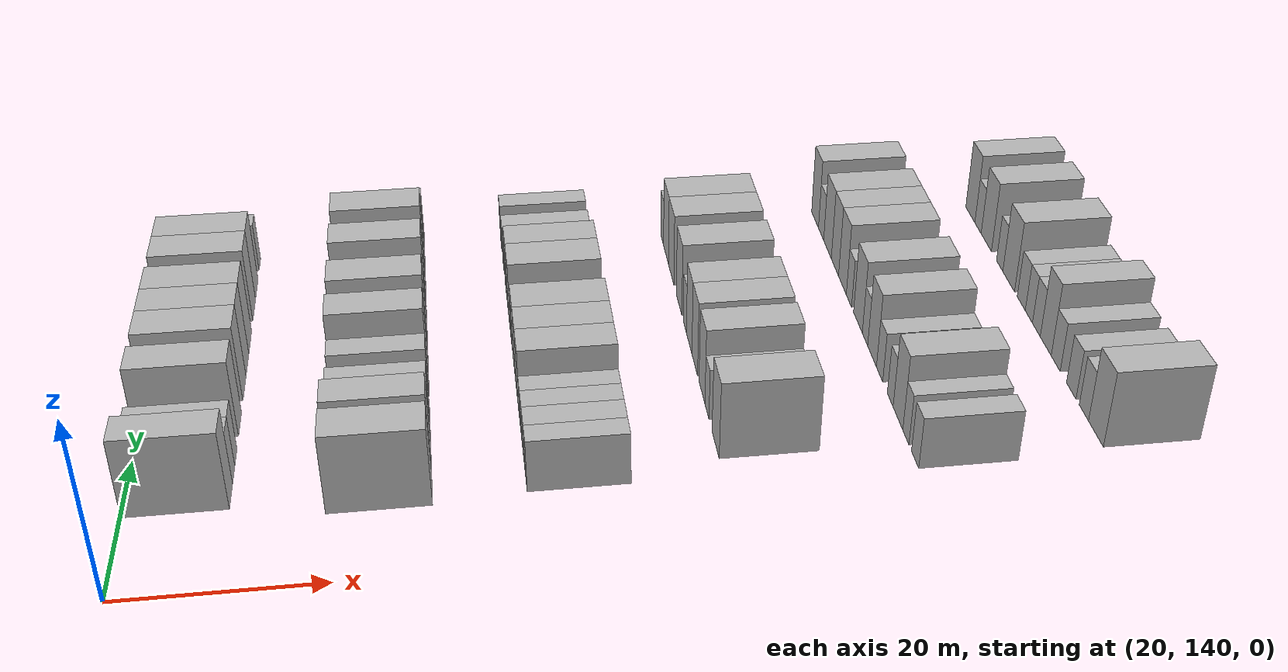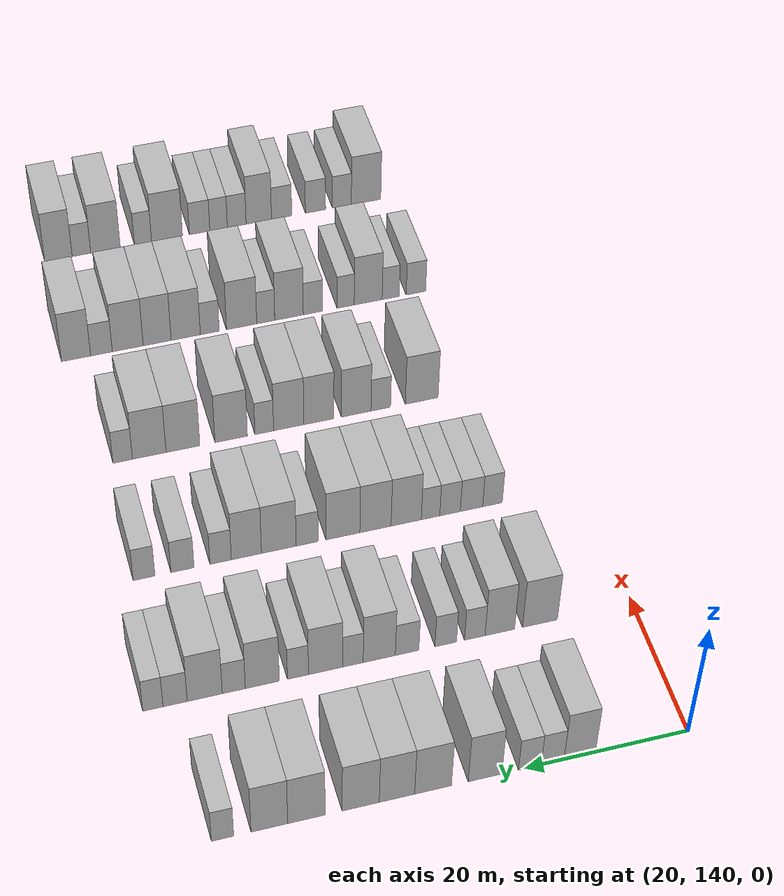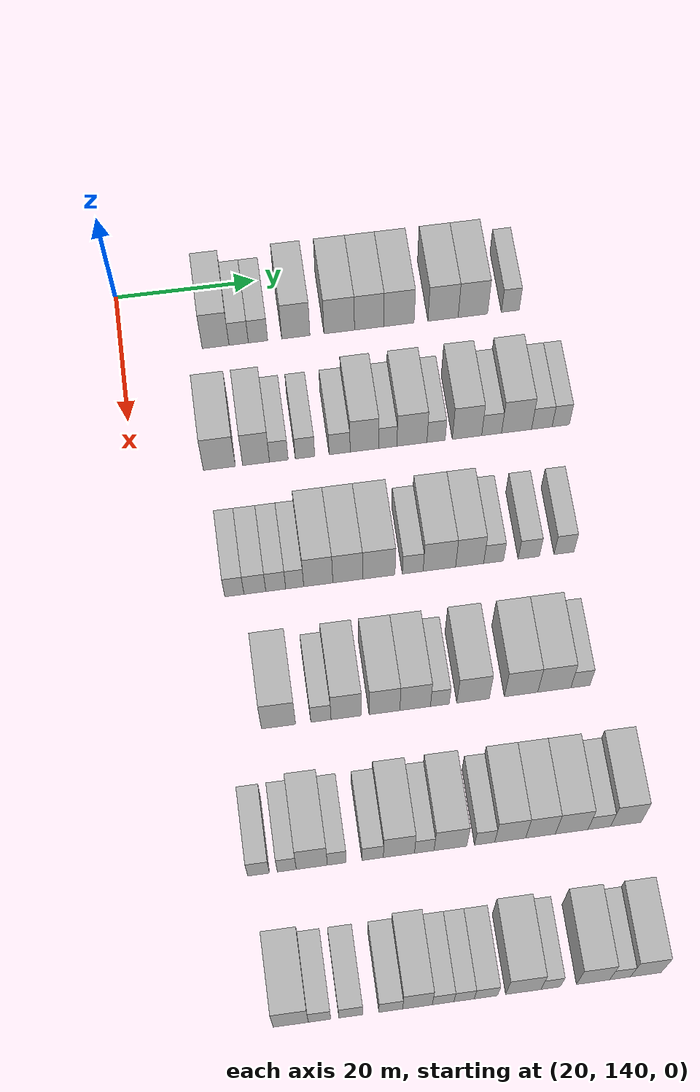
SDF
<sdf version="1.6">
 <world name="default">
  <model name="building_131">
   <static>1</static>
   <pose>25.0000 153.3225 0 0.000000 0.000000 0.000000</pose>
   <link name="link">
    <pose>0 0 4.50 0 0 0</pose>
    <collision name="collision"><geometry><box><size>10.0000 3.8089 9.0000</size></box></geometry></collision>
    <visual name="visual">
     <cast_shadows>0</cast_shadows>
     <geometry><box><size>10.0000 3.8089 9.0000</size></box></geometry>
     <material>
      <script>
       <uri>model://HANNAS_wall/materials/scripts</uri>
       <uri>model://HANNAS_wall/materials/textures</uri>
       <name>vrc/HANNAS_wall</name>
      </script>
     </material>
    </visual>
   </link>
  </model>
  <model name="building_132">
   <static>1</static>
   <pose>25.0000 156.6033 0 0.000000 0.000000 0.000000</pose>
   <link name="link">
    <pose>0 0 3.00 0 0 0</pose>
    <collision name="collision"><geometry><box><size>10.0000 2.7527 6.0000</size></box></geometry></collision>
    <visual name="visual">
     <cast_shadows>0</cast_shadows>
     <geometry><box><size>10.0000 2.7527 6.0000</size></box></geometry>
     <material>
      <script>
       <uri>model://HANNAS_wall/materials/scripts</uri>
       <uri>model://HANNAS_wall/materials/textures</uri>
       <name>vrc/HANNAS_wall</name>
      </script>
     </material>
    </visual>
   </link>
  </model>
  <model name="building_133">
   <static>1</static>
   <pose>25.0000 159.3531 0 0.000000 0.000000 0.000000</pose>
   <link name="link">
    <pose>0 0 3.00 0 0 0</pose>
    <collision name="collision"><geometry><box><size>10.0000 2.7469 6.0000</size></box></geometry></collision>
    <visual name="visual">
     <cast_shadows>0</cast_shadows>
     <geometry><box><size>10.0000 2.7469 6.0000</size></box></geometry>
     <material>
      <script>
       <uri>model://HANNAS_wall/materials/scripts</uri>
       <uri>model://HANNAS_wall/materials/textures</uri>
       <name>vrc/HANNAS_wall</name>
      </script>
     </material>
    </visual>
   </link>
  </model>
  <model name="building_134">
   <static>1</static>
   <pose>25.0000 164.7427 0 0.000000 0.000000 0.000000</pose>
   <link name="link">
    <pose>0 0 4.50 0 0 0</pose>
    <collision name="collision"><geometry><box><size>10.0000 4.0324 9.0000</size></box></geometry></collision>
    <visual name="visual">
     <cast_shadows>0</cast_shadows>
     <geometry><box><size>10.0000 4.0324 9.0000</size></box></geometry>
     <material>
      <script>
       <uri>model://HANNAS_wall/materials/scripts</uri>
       <uri>model://HANNAS_wall/materials/textures</uri>
       <name>vrc/HANNAS_wall</name>
      </script>
     </material>
    </visual>
   </link>
  </model>
  <model name="building_135">
   <static>1</static>
   <pose>25.0000 170.9403 0 0.000000 0.000000 0.000000</pose>
   <link name="link">
    <pose>0 0 4.50 0 0 0</pose>
    <collision name="collision"><geometry><box><size>10.0000 4.3627 9.0000</size></box></geometry></collision>
    <visual name="visual">
     <cast_shadows>0</cast_shadows>
     <geometry><box><size>10.0000 4.3627 9.0000</size></box></geometry>
     <material>
      <script>
       <uri>model://HANNAS_wall/materials/scripts</uri>
       <uri>model://HANNAS_wall/materials/textures</uri>
       <name>vrc/HANNAS_wall</name>
      </script>
     </material>
    </visual>
   </link>
  </model>
  <model name="building_136">
   <static>1</static>
   <pose>25.0000 175.2141 0 0.000000 0.000000 0.000000</pose>
   <link name="link">
    <pose>0 0 4.50 0 0 0</pose>
    <collision name="collision"><geometry><box><size>10.0000 4.1849 9.0000</size></box></geometry></collision>
    <visual name="visual">
     <cast_shadows>0</cast_shadows>
     <geometry><box><size>10.0000 4.1849 9.0000</size></box></geometry>
     <material>
      <script>
       <uri>model://HANNAS_wall/materials/scripts</uri>
       <uri>model://HANNAS_wall/materials/textures</uri>
       <name>vrc/HANNAS_wall</name>
      </script>
     </material>
    </visual>
   </link>
  </model>
  <model name="building_137">
   <static>1</static>
   <pose>25.0000 179.4882 0 0.000000 0.000000 0.000000</pose>
   <link name="link">
    <pose>0 0 4.50 0 0 0</pose>
    <collision name="collision"><geometry><box><size>10.0000 4.3634 9.0000</size></box></geometry></collision>
    <visual name="visual">
     <cast_shadows>0</cast_shadows>
     <geometry><box><size>10.0000 4.3634 9.0000</size></box></geometry>
     <material>
      <script>
       <uri>model://HANNAS_wall/materials/scripts</uri>
       <uri>model://HANNAS_wall/materials/textures</uri>
       <name>vrc/HANNAS_wall</name>
      </script>
     </material>
    </visual>
   </link>
  </model>
  <model name="building_138">
   <static>1</static>
   <pose>25.0000 185.8412 0 0.000000 0.000000 0.000000</pose>
   <link name="link">
    <pose>0 0 4.50 0 0 0</pose>
    <collision name="collision"><geometry><box><size>10.0000 4.3426 9.0000</size></box></geometry></collision>
    <visual name="visual">
     <cast_shadows>0</cast_shadows>
     <geometry><box><size>10.0000 4.3426 9.0000</size></box></geometry>
     <material>
      <script>
       <uri>model://HANNAS_wall/materials/scripts</uri>
       <uri>model://HANNAS_wall/materials/textures</uri>
       <name>vrc/HANNAS_wall</name>
      </script>
     </material>
    </visual>
   </link>
  </model>
  <model name="building_139">
   <static>1</static>
   <pose>25.0000 190.1356 0 0.000000 0.000000 0.000000</pose>
   <link name="link">
    <pose>0 0 4.50 0 0 0</pose>
    <collision name="collision"><geometry><box><size>10.0000 4.2461 9.0000</size></box></geometry></collision>
    <visual name="visual">
     <cast_shadows>0</cast_shadows>
     <geometry><box><size>10.0000 4.2461 9.0000</size></box></geometry>
     <material>
      <script>
       <uri>model://HANNAS_wall/materials/scripts</uri>
       <uri>model://HANNAS_wall/materials/textures</uri>
       <name>vrc/HANNAS_wall</name>
      </script>
     </material>
    </visual>
   </link>
  </model>
  <model name="building_140">
   <static>1</static>
   <pose>25.0000 195.5425 0 0.000000 0.000000 0.000000</pose>
   <link name="link">
    <pose>0 0 3.00 0 0 0</pose>
    <collision name="collision"><geometry><box><size>10.0000 2.5679 6.0000</size></box></geometry></collision>
    <visual name="visual">
     <cast_shadows>0</cast_shadows>
     <geometry><box><size>10.0000 2.5679 6.0000</size></box></geometry>
     <material>
      <script>
       <uri>model://HANNAS_wall/materials/scripts</uri>
       <uri>model://HANNAS_wall/materials/textures</uri>
       <name>vrc/HANNAS_wall</name>
      </script>
     </material>
    </visual>
   </link>
  </model>
  <model name="building_304">
   <static>1</static>
   <pose>44.0000 151.8155 0 0.000000 0.000000 0.000000</pose>
   <link name="link">
    <pose>0 0 4.50 0 0 0</pose>
    <collision name="collision"><geometry><box><size>10.0000 4.4220 9.0000</size></box></geometry></collision>
    <visual name="visual">
     <cast_shadows>0</cast_shadows>
     <geometry><box><size>10.0000 4.4220 9.0000</size></box></geometry>
     <material>
      <script>
       <uri>model://HANNAS_wall/materials/scripts</uri>
       <uri>model://HANNAS_wall/materials/textures</uri>
       <name>vrc/HANNAS_wall</name>
      </script>
     </material>
    </visual>
   </link>
  </model>
  <model name="building_305">
   <static>1</static>
   <pose>44.0000 156.8852 0 0.000000 0.000000 0.000000</pose>
   <link name="link">
    <pose>0 0 4.50 0 0 0</pose>
    <collision name="collision"><geometry><box><size>10.0000 3.7173 9.0000</size></box></geometry></collision>
    <visual name="visual">
     <cast_shadows>0</cast_shadows>
     <geometry><box><size>10.0000 3.7173 9.0000</size></box></geometry>
     <material>
      <script>
       <uri>model://HANNAS_wall/materials/scripts</uri>
       <uri>model://HANNAS_wall/materials/textures</uri>
       <name>vrc/HANNAS_wall</name>
      </script>
     </material>
    </visual>
   </link>
  </model>
  <model name="building_306">
   <static>1</static>
   <pose>44.0000 160.0343 0 0.000000 0.000000 0.000000</pose>
   <link name="link">
    <pose>0 0 3.00 0 0 0</pose>
    <collision name="collision"><geometry><box><size>10.0000 2.5809 6.0000</size></box></geometry></collision>
    <visual name="visual">
     <cast_shadows>0</cast_shadows>
     <geometry><box><size>10.0000 2.5809 6.0000</size></box></geometry>
     <material>
      <script>
       <uri>model://HANNAS_wall/materials/scripts</uri>
       <uri>model://HANNAS_wall/materials/textures</uri>
       <name>vrc/HANNAS_wall</name>
      </script>
     </material>
    </visual>
   </link>
  </model>
  <model name="building_307">
   <static>1</static>
   <pose>44.0000 163.6705 0 0.000000 0.000000 0.000000</pose>
   <link name="link">
    <pose>0 0 3.00 0 0 0</pose>
    <collision name="collision"><geometry><box><size>10.0000 2.6915 6.0000</size></box></geometry></collision>
    <visual name="visual">
     <cast_shadows>0</cast_shadows>
     <geometry><box><size>10.0000 2.6915 6.0000</size></box></geometry>
     <material>
      <script>
       <uri>model://HANNAS_wall/materials/scripts</uri>
       <uri>model://HANNAS_wall/materials/textures</uri>
       <name>vrc/HANNAS_wall</name>
      </script>
     </material>
    </visual>
   </link>
  </model>
  <model name="building_308">
   <static>1</static>
   <pose>44.0000 168.4774 0 0.000000 0.000000 0.000000</pose>
   <link name="link">
    <pose>0 0 3.00 0 0 0</pose>
    <collision name="collision"><geometry><box><size>10.0000 2.9225 6.0000</size></box></geometry></collision>
    <visual name="visual">
     <cast_shadows>0</cast_shadows>
     <geometry><box><size>10.0000 2.9225 6.0000</size></box></geometry>
     <material>
      <script>
       <uri>model://HANNAS_wall/materials/scripts</uri>
       <uri>model://HANNAS_wall/materials/textures</uri>
       <name>vrc/HANNAS_wall</name>
      </script>
     </material>
    </visual>
   </link>
  </model>
  <model name="building_309">
   <static>1</static>
   <pose>44.0000 171.9271 0 0.000000 0.000000 0.000000</pose>
   <link name="link">
    <pose>0 0 4.50 0 0 0</pose>
    <collision name="collision"><geometry><box><size>10.0000 3.9768 9.0000</size></box></geometry></collision>
    <visual name="visual">
     <cast_shadows>0</cast_shadows>
     <geometry><box><size>10.0000 3.9768 9.0000</size></box></geometry>
     <material>
      <script>
       <uri>model://HANNAS_wall/materials/scripts</uri>
       <uri>model://HANNAS_wall/materials/textures</uri>
       <name>vrc/HANNAS_wall</name>
      </script>
     </material>
    </visual>
   </link>
  </model>
  <model name="building_310">
   <static>1</static>
   <pose>44.0000 175.1799 0 0.000000 0.000000 0.000000</pose>
   <link name="link">
    <pose>0 0 3.00 0 0 0</pose>
    <collision name="collision"><geometry><box><size>10.0000 2.5288 6.0000</size></box></geometry></collision>
    <visual name="visual">
     <cast_shadows>0</cast_shadows>
     <geometry><box><size>10.0000 2.5288 6.0000</size></box></geometry>
     <material>
      <script>
       <uri>model://HANNAS_wall/materials/scripts</uri>
       <uri>model://HANNAS_wall/materials/textures</uri>
       <name>vrc/HANNAS_wall</name>
      </script>
     </material>
    </visual>
   </link>
  </model>
  <model name="building_311">
   <static>1</static>
   <pose>44.0000 178.5439 0 0.000000 0.000000 0.000000</pose>
   <link name="link">
    <pose>0 0 4.50 0 0 0</pose>
    <collision name="collision"><geometry><box><size>10.0000 4.1991 9.0000</size></box></geometry></collision>
    <visual name="visual">
     <cast_shadows>0</cast_shadows>
     <geometry><box><size>10.0000 4.1991 9.0000</size></box></geometry>
     <material>
      <script>
       <uri>model://HANNAS_wall/materials/scripts</uri>
       <uri>model://HANNAS_wall/materials/textures</uri>
       <name>vrc/HANNAS_wall</name>
      </script>
     </material>
    </visual>
   </link>
  </model>
  <model name="building_312">
   <static>1</static>
   <pose>44.0000 181.9215 0 0.000000 0.000000 0.000000</pose>
   <link name="link">
    <pose>0 0 3.00 0 0 0</pose>
    <collision name="collision"><geometry><box><size>10.0000 2.5561 6.0000</size></box></geometry></collision>
    <visual name="visual">
     <cast_shadows>0</cast_shadows>
     <geometry><box><size>10.0000 2.5561 6.0000</size></box></geometry>
     <material>
      <script>
       <uri>model://HANNAS_wall/materials/scripts</uri>
       <uri>model://HANNAS_wall/materials/textures</uri>
       <name>vrc/HANNAS_wall</name>
      </script>
     </material>
    </visual>
   </link>
  </model>
  <model name="building_313">
   <static>1</static>
   <pose>44.0000 186.2566 0 0.000000 0.000000 0.000000</pose>
   <link name="link">
    <pose>0 0 4.50 0 0 0</pose>
    <collision name="collision"><geometry><box><size>10.0000 4.1141 9.0000</size></box></geometry></collision>
    <visual name="visual">
     <cast_shadows>0</cast_shadows>
     <geometry><box><size>10.0000 4.1141 9.0000</size></box></geometry>
     <material>
      <script>
       <uri>model://HANNAS_wall/materials/scripts</uri>
       <uri>model://HANNAS_wall/materials/textures</uri>
       <name>vrc/HANNAS_wall</name>
      </script>
     </material>
    </visual>
   </link>
  </model>
  <model name="building_314">
   <static>1</static>
   <pose>44.0000 189.7070 0 0.000000 0.000000 0.000000</pose>
   <link name="link">
    <pose>0 0 3.00 0 0 0</pose>
    <collision name="collision"><geometry><box><size>10.0000 2.7869 6.0000</size></box></geometry></collision>
    <visual name="visual">
     <cast_shadows>0</cast_shadows>
     <geometry><box><size>10.0000 2.7869 6.0000</size></box></geometry>
     <material>
      <script>
       <uri>model://HANNAS_wall/materials/scripts</uri>
       <uri>model://HANNAS_wall/materials/textures</uri>
       <name>vrc/HANNAS_wall</name>
      </script>
     </material>
    </visual>
   </link>
  </model>
  <model name="building_315">
   <static>1</static>
   <pose>44.0000 193.2091 0 0.000000 0.000000 0.000000</pose>
   <link name="link">
    <pose>0 0 4.50 0 0 0</pose>
    <collision name="collision"><geometry><box><size>10.0000 4.2172 9.0000</size></box></geometry></collision>
    <visual name="visual">
     <cast_shadows>0</cast_shadows>
     <geometry><box><size>10.0000 4.2172 9.0000</size></box></geometry>
     <material>
      <script>
       <uri>model://HANNAS_wall/materials/scripts</uri>
       <uri>model://HANNAS_wall/materials/textures</uri>
       <name>vrc/HANNAS_wall</name>
      </script>
     </material>
    </visual>
   </link>
  </model>
  <model name="building_316">
   <static>1</static>
   <pose>44.0000 196.7665 0 0.000000 0.000000 0.000000</pose>
   <link name="link">
    <pose>0 0 3.00 0 0 0</pose>
    <collision name="collision"><geometry><box><size>10.0000 2.8976 6.0000</size></box></geometry></collision>
    <visual name="visual">
     <cast_shadows>0</cast_shadows>
     <geometry><box><size>10.0000 2.8976 6.0000</size></box></geometry>
     <material>
      <script>
       <uri>model://HANNAS_wall/materials/scripts</uri>
       <uri>model://HANNAS_wall/materials/textures</uri>
       <name>vrc/HANNAS_wall</name>
      </script>
     </material>
    </visual>
   </link>
  </model>
  <model name="building_317">
   <static>1</static>
   <pose>44.0000 199.4266 0 0.000000 0.000000 0.000000</pose>
   <link name="link">
    <pose>0 0 3.00 0 0 0</pose>
    <collision name="collision"><geometry><box><size>10.0000 2.4227 6.0000</size></box></geometry></collision>
    <visual name="visual">
     <cast_shadows>0</cast_shadows>
     <geometry><box><size>10.0000 2.4227 6.0000</size></box></geometry>
     <material>
      <script>
       <uri>model://HANNAS_wall/materials/scripts</uri>
       <uri>model://HANNAS_wall/materials/textures</uri>
       <name>vrc/HANNAS_wall</name>
      </script>
     </material>
    </visual>
   </link>
  </model>
  <model name="building_479">
   <static>1</static>
   <pose>63.0000 151.7707 0 0.000000 0.000000 0.000000</pose>
   <link name="link">
    <pose>0 0 3.00 0 0 0</pose>
    <collision name="collision"><geometry><box><size>10.0000 2.5853 6.0000</size></box></geometry></collision>
    <visual name="visual">
     <cast_shadows>0</cast_shadows>
     <geometry><box><size>10.0000 2.5853 6.0000</size></box></geometry>
     <material>
      <script>
       <uri>model://HANNAS_wall/materials/scripts</uri>
       <uri>model://HANNAS_wall/materials/textures</uri>
       <name>vrc/HANNAS_wall</name>
      </script>
     </material>
    </visual>
   </link>
  </model>
  <model name="building_480">
   <static>1</static>
   <pose>63.0000 154.5323 0 0.000000 0.000000 0.000000</pose>
   <link name="link">
    <pose>0 0 3.00 0 0 0</pose>
    <collision name="collision"><geometry><box><size>10.0000 2.9378 6.0000</size></box></geometry></collision>
    <visual name="visual">
     <cast_shadows>0</cast_shadows>
     <geometry><box><size>10.0000 2.9378 6.0000</size></box></geometry>
     <material>
      <script>
       <uri>model://HANNAS_wall/materials/scripts</uri>
       <uri>model://HANNAS_wall/materials/textures</uri>
       <name>vrc/HANNAS_wall</name>
      </script>
     </material>
    </visual>
   </link>
  </model>
  <model name="building_481">
   <static>1</static>
   <pose>63.0000 157.3398 0 0.000000 0.000000 0.000000</pose>
   <link name="link">
    <pose>0 0 3.00 0 0 0</pose>
    <collision name="collision"><geometry><box><size>10.0000 2.6772 6.0000</size></box></geometry></collision>
    <visual name="visual">
     <cast_shadows>0</cast_shadows>
     <geometry><box><size>10.0000 2.6772 6.0000</size></box></geometry>
     <material>
      <script>
       <uri>model://HANNAS_wall/materials/scripts</uri>
       <uri>model://HANNAS_wall/materials/textures</uri>
       <name>vrc/HANNAS_wall</name>
      </script>
     </material>
    </visual>
   </link>
  </model>
  <model name="building_482">
   <static>1</static>
   <pose>63.0000 159.8898 0 0.000000 0.000000 0.000000</pose>
   <link name="link">
    <pose>0 0 3.00 0 0 0</pose>
    <collision name="collision"><geometry><box><size>10.0000 2.4228 6.0000</size></box></geometry></collision>
    <visual name="visual">
     <cast_shadows>0</cast_shadows>
     <geometry><box><size>10.0000 2.4228 6.0000</size></box></geometry>
     <material>
      <script>
       <uri>model://HANNAS_wall/materials/scripts</uri>
       <uri>model://HANNAS_wall/materials/textures</uri>
       <name>vrc/HANNAS_wall</name>
      </script>
     </material>
    </visual>
   </link>
  </model>
  <model name="building_483">
   <static>1</static>
   <pose>63.0000 163.0649 0 0.000000 0.000000 0.000000</pose>
   <link name="link">
    <pose>0 0 4.50 0 0 0</pose>
    <collision name="collision"><geometry><box><size>10.0000 3.9274 9.0000</size></box></geometry></collision>
    <visual name="visual">
     <cast_shadows>0</cast_shadows>
     <geometry><box><size>10.0000 3.9274 9.0000</size></box></geometry>
     <material>
      <script>
       <uri>model://HANNAS_wall/materials/scripts</uri>
       <uri>model://HANNAS_wall/materials/textures</uri>
       <name>vrc/HANNAS_wall</name>
      </script>
     </material>
    </visual>
   </link>
  </model>
  <model name="building_484">
   <static>1</static>
   <pose>63.0000 167.0472 0 0.000000 0.000000 0.000000</pose>
   <link name="link">
    <pose>0 0 4.50 0 0 0</pose>
    <collision name="collision"><geometry><box><size>10.0000 4.0372 9.0000</size></box></geometry></collision>
    <visual name="visual">
     <cast_shadows>0</cast_shadows>
     <geometry><box><size>10.0000 4.0372 9.0000</size></box></geometry>
     <material>
      <script>
       <uri>model://HANNAS_wall/materials/scripts</uri>
       <uri>model://HANNAS_wall/materials/textures</uri>
       <name>vrc/HANNAS_wall</name>
      </script>
     </material>
    </visual>
   </link>
  </model>
  <model name="building_485">
   <static>1</static>
   <pose>63.0000 171.2510 0 0.000000 0.000000 0.000000</pose>
   <link name="link">
    <pose>0 0 4.50 0 0 0</pose>
    <collision name="collision"><geometry><box><size>10.0000 4.3704 9.0000</size></box></geometry></collision>
    <visual name="visual">
     <cast_shadows>0</cast_shadows>
     <geometry><box><size>10.0000 4.3704 9.0000</size></box></geometry>
     <material>
      <script>
       <uri>model://HANNAS_wall/materials/scripts</uri>
       <uri>model://HANNAS_wall/materials/textures</uri>
       <name>vrc/HANNAS_wall</name>
      </script>
     </material>
    </visual>
   </link>
  </model>
  <model name="building_486">
   <static>1</static>
   <pose>63.0000 175.8462 0 0.000000 0.000000 0.000000</pose>
   <link name="link">
    <pose>0 0 3.00 0 0 0</pose>
    <collision name="collision"><geometry><box><size>10.0000 2.8199 6.0000</size></box></geometry></collision>
    <visual name="visual">
     <cast_shadows>0</cast_shadows>
     <geometry><box><size>10.0000 2.8199 6.0000</size></box></geometry>
     <material>
      <script>
       <uri>model://HANNAS_wall/materials/scripts</uri>
       <uri>model://HANNAS_wall/materials/textures</uri>
       <name>vrc/HANNAS_wall</name>
      </script>
     </material>
    </visual>
   </link>
  </model>
  <model name="building_487">
   <static>1</static>
   <pose>63.0000 179.4598 0 0.000000 0.000000 0.000000</pose>
   <link name="link">
    <pose>0 0 4.50 0 0 0</pose>
    <collision name="collision"><geometry><box><size>10.0000 4.4073 9.0000</size></box></geometry></collision>
    <visual name="visual">
     <cast_shadows>0</cast_shadows>
     <geometry><box><size>10.0000 4.4073 9.0000</size></box></geometry>
     <material>
      <script>
       <uri>model://HANNAS_wall/materials/scripts</uri>
       <uri>model://HANNAS_wall/materials/textures</uri>
       <name>vrc/HANNAS_wall</name>
      </script>
     </material>
    </visual>
   </link>
  </model>
  <model name="building_488">
   <static>1</static>
   <pose>63.0000 183.5736 0 0.000000 0.000000 0.000000</pose>
   <link name="link">
    <pose>0 0 4.50 0 0 0</pose>
    <collision name="collision"><geometry><box><size>10.0000 3.8203 9.0000</size></box></geometry></collision>
    <visual name="visual">
     <cast_shadows>0</cast_shadows>
     <geometry><box><size>10.0000 3.8203 9.0000</size></box></geometry>
     <material>
      <script>
       <uri>model://HANNAS_wall/materials/scripts</uri>
       <uri>model://HANNAS_wall/materials/textures</uri>
       <name>vrc/HANNAS_wall</name>
      </script>
     </material>
    </visual>
   </link>
  </model>
  <model name="building_489">
   <static>1</static>
   <pose>63.0000 186.8365 0 0.000000 0.000000 0.000000</pose>
   <link name="link">
    <pose>0 0 3.00 0 0 0</pose>
    <collision name="collision"><geometry><box><size>10.0000 2.7054 6.0000</size></box></geometry></collision>
    <visual name="visual">
     <cast_shadows>0</cast_shadows>
     <geometry><box><size>10.0000 2.7054 6.0000</size></box></geometry>
     <material>
      <script>
       <uri>model://HANNAS_wall/materials/scripts</uri>
       <uri>model://HANNAS_wall/materials/textures</uri>
       <name>vrc/HANNAS_wall</name>
      </script>
     </material>
    </visual>
   </link>
  </model>
  <model name="building_490">
   <static>1</static>
   <pose>63.0000 191.6450 0 0.000000 0.000000 0.000000</pose>
   <link name="link">
    <pose>0 0 3.00 0 0 0</pose>
    <collision name="collision"><geometry><box><size>10.0000 2.9115 6.0000</size></box></geometry></collision>
    <visual name="visual">
     <cast_shadows>0</cast_shadows>
     <geometry><box><size>10.0000 2.9115 6.0000</size></box></geometry>
     <material>
      <script>
       <uri>model://HANNAS_wall/materials/scripts</uri>
       <uri>model://HANNAS_wall/materials/textures</uri>
       <name>vrc/HANNAS_wall</name>
      </script>
     </material>
    </visual>
   </link>
  </model>
  <model name="building_491">
   <static>1</static>
   <pose>63.0000 196.4640 0 0.000000 0.000000 0.000000</pose>
   <link name="link">
    <pose>0 0 3.00 0 0 0</pose>
    <collision name="collision"><geometry><box><size>10.0000 2.7266 6.0000</size></box></geometry></collision>
    <visual name="visual">
     <cast_shadows>0</cast_shadows>
     <geometry><box><size>10.0000 2.7266 6.0000</size></box></geometry>
     <material>
      <script>
       <uri>model://HANNAS_wall/materials/scripts</uri>
       <uri>model://HANNAS_wall/materials/textures</uri>
       <name>vrc/HANNAS_wall</name>
      </script>
     </material>
    </visual>
   </link>
  </model>
  <model name="building_632">
   <static>1</static>
   <pose>82.0000 155.4230 0 0.000000 0.000000 0.000000</pose>
   <link name="link">
    <pose>0 0 4.50 0 0 0</pose>
    <collision name="collision"><geometry><box><size>10.0000 4.4567 9.0000</size></box></geometry></collision>
    <visual name="visual">
     <cast_shadows>0</cast_shadows>
     <geometry><box><size>10.0000 4.4567 9.0000</size></box></geometry>
     <material>
      <script>
       <uri>model://HANNAS_wall/materials/scripts</uri>
       <uri>model://HANNAS_wall/materials/textures</uri>
       <name>vrc/HANNAS_wall</name>
      </script>
     </material>
    </visual>
   </link>
  </model>
  <model name="building_633">
   <static>1</static>
   <pose>82.0000 160.9743 0 0.000000 0.000000 0.000000</pose>
   <link name="link">
    <pose>0 0 3.00 0 0 0</pose>
    <collision name="collision"><geometry><box><size>10.0000 2.6460 6.0000</size></box></geometry></collision>
    <visual name="visual">
     <cast_shadows>0</cast_shadows>
     <geometry><box><size>10.0000 2.6460 6.0000</size></box></geometry>
     <material>
      <script>
       <uri>model://HANNAS_wall/materials/scripts</uri>
       <uri>model://HANNAS_wall/materials/textures</uri>
       <name>vrc/HANNAS_wall</name>
      </script>
     </material>
    </visual>
   </link>
  </model>
  <model name="building_634">
   <static>1</static>
   <pose>82.0000 164.2954 0 0.000000 0.000000 0.000000</pose>
   <link name="link">
    <pose>0 0 4.50 0 0 0</pose>
    <collision name="collision"><geometry><box><size>10.0000 3.9962 9.0000</size></box></geometry></collision>
    <visual name="visual">
     <cast_shadows>0</cast_shadows>
     <geometry><box><size>10.0000 3.9962 9.0000</size></box></geometry>
     <material>
      <script>
       <uri>model://HANNAS_wall/materials/scripts</uri>
       <uri>model://HANNAS_wall/materials/textures</uri>
       <name>vrc/HANNAS_wall</name>
      </script>
     </material>
    </visual>
   </link>
  </model>
  <model name="building_635">
   <static>1</static>
   <pose>82.0000 169.3113 0 0.000000 0.000000 0.000000</pose>
   <link name="link">
    <pose>0 0 4.50 0 0 0</pose>
    <collision name="collision"><geometry><box><size>10.0000 4.0355 9.0000</size></box></geometry></collision>
    <visual name="visual">
     <cast_shadows>0</cast_shadows>
     <geometry><box><size>10.0000 4.0355 9.0000</size></box></geometry>
     <material>
      <script>
       <uri>model://HANNAS_wall/materials/scripts</uri>
       <uri>model://HANNAS_wall/materials/textures</uri>
       <name>vrc/HANNAS_wall</name>
      </script>
     </material>
    </visual>
   </link>
  </model>
  <model name="building_636">
   <static>1</static>
   <pose>82.0000 173.3418 0 0.000000 0.000000 0.000000</pose>
   <link name="link">
    <pose>0 0 4.50 0 0 0</pose>
    <collision name="collision"><geometry><box><size>10.0000 4.0255 9.0000</size></box></geometry></collision>
    <visual name="visual">
     <cast_shadows>0</cast_shadows>
     <geometry><box><size>10.0000 4.0255 9.0000</size></box></geometry>
     <material>
      <script>
       <uri>model://HANNAS_wall/materials/scripts</uri>
       <uri>model://HANNAS_wall/materials/textures</uri>
       <name>vrc/HANNAS_wall</name>
      </script>
     </material>
    </visual>
   </link>
  </model>
  <model name="building_637">
   <static>1</static>
   <pose>82.0000 176.5953 0 0.000000 0.000000 0.000000</pose>
   <link name="link">
    <pose>0 0 3.00 0 0 0</pose>
    <collision name="collision"><geometry><box><size>10.0000 2.4814 6.0000</size></box></geometry></collision>
    <visual name="visual">
     <cast_shadows>0</cast_shadows>
     <geometry><box><size>10.0000 2.4814 6.0000</size></box></geometry>
     <material>
      <script>
       <uri>model://HANNAS_wall/materials/scripts</uri>
       <uri>model://HANNAS_wall/materials/textures</uri>
       <name>vrc/HANNAS_wall</name>
      </script>
     </material>
    </visual>
   </link>
  </model>
  <model name="building_638">
   <static>1</static>
   <pose>82.0000 180.9791 0 0.000000 0.000000 0.000000</pose>
   <link name="link">
    <pose>0 0 4.50 0 0 0</pose>
    <collision name="collision"><geometry><box><size>10.0000 4.2861 9.0000</size></box></geometry></collision>
    <visual name="visual">
     <cast_shadows>0</cast_shadows>
     <geometry><box><size>10.0000 4.2861 9.0000</size></box></geometry>
     <material>
      <script>
       <uri>model://HANNAS_wall/materials/scripts</uri>
       <uri>model://HANNAS_wall/materials/textures</uri>
       <name>vrc/HANNAS_wall</name>
      </script>
     </material>
    </visual>
   </link>
  </model>
  <model name="building_639">
   <static>1</static>
   <pose>82.0000 187.3376 0 0.000000 0.000000 0.000000</pose>
   <link name="link">
    <pose>0 0 4.50 0 0 0</pose>
    <collision name="collision"><geometry><box><size>10.0000 4.4310 9.0000</size></box></geometry></collision>
    <visual name="visual">
     <cast_shadows>0</cast_shadows>
     <geometry><box><size>10.0000 4.4310 9.0000</size></box></geometry>
     <material>
      <script>
       <uri>model://HANNAS_wall/materials/scripts</uri>
       <uri>model://HANNAS_wall/materials/textures</uri>
       <name>vrc/HANNAS_wall</name>
      </script>
     </material>
    </visual>
   </link>
  </model>
  <model name="building_640">
   <static>1</static>
   <pose>82.0000 191.7487 0 0.000000 0.000000 0.000000</pose>
   <link name="link">
    <pose>0 0 4.50 0 0 0</pose>
    <collision name="collision"><geometry><box><size>10.0000 4.3911 9.0000</size></box></geometry></collision>
    <visual name="visual">
     <cast_shadows>0</cast_shadows>
     <geometry><box><size>10.0000 4.3911 9.0000</size></box></geometry>
     <material>
      <script>
       <uri>model://HANNAS_wall/materials/scripts</uri>
       <uri>model://HANNAS_wall/materials/textures</uri>
       <name>vrc/HANNAS_wall</name>
      </script>
     </material>
    </visual>
   </link>
  </model>
  <model name="building_641">
   <static>1</static>
   <pose>82.0000 195.2143 0 0.000000 0.000000 0.000000</pose>
   <link name="link">
    <pose>0 0 3.00 0 0 0</pose>
    <collision name="collision"><geometry><box><size>10.0000 2.5402 6.0000</size></box></geometry></collision>
    <visual name="visual">
     <cast_shadows>0</cast_shadows>
     <geometry><box><size>10.0000 2.5402 6.0000</size></box></geometry>
     <material>
      <script>
       <uri>model://HANNAS_wall/materials/scripts</uri>
       <uri>model://HANNAS_wall/materials/textures</uri>
       <name>vrc/HANNAS_wall</name>
      </script>
     </material>
    </visual>
   </link>
  </model>
  <model name="building_808">
   <static>1</static>
   <pose>101.0000 150.6199 0 0.000000 0.000000 0.000000</pose>
   <link name="link">
    <pose>0 0 3.00 0 0 0</pose>
    <collision name="collision"><geometry><box><size>10.0000 2.7582 6.0000</size></box></geometry></collision>
    <visual name="visual">
     <cast_shadows>0</cast_shadows>
     <geometry><box><size>10.0000 2.7582 6.0000</size></box></geometry>
     <material>
      <script>
       <uri>model://HANNAS_wall/materials/scripts</uri>
       <uri>model://HANNAS_wall/materials/textures</uri>
       <name>vrc/HANNAS_wall</name>
      </script>
     </material>
    </visual>
   </link>
  </model>
  <model name="building_809">
   <static>1</static>
   <pose>101.0000 154.1992 0 0.000000 0.000000 0.000000</pose>
   <link name="link">
    <pose>0 0 3.00 0 0 0</pose>
    <collision name="collision"><geometry><box><size>10.0000 2.4004 6.0000</size></box></geometry></collision>
    <visual name="visual">
     <cast_shadows>0</cast_shadows>
     <geometry><box><size>10.0000 2.4004 6.0000</size></box></geometry>
     <material>
      <script>
       <uri>model://HANNAS_wall/materials/scripts</uri>
       <uri>model://HANNAS_wall/materials/textures</uri>
       <name>vrc/HANNAS_wall</name>
      </script>
     </material>
    </visual>
   </link>
  </model>
  <model name="building_810">
   <static>1</static>
   <pose>101.0000 157.3663 0 0.000000 0.000000 0.000000</pose>
   <link name="link">
    <pose>0 0 4.50 0 0 0</pose>
    <collision name="collision"><geometry><box><size>10.0000 3.9337 9.0000</size></box></geometry></collision>
    <visual name="visual">
     <cast_shadows>0</cast_shadows>
     <geometry><box><size>10.0000 3.9337 9.0000</size></box></geometry>
     <material>
      <script>
       <uri>model://HANNAS_wall/materials/scripts</uri>
       <uri>model://HANNAS_wall/materials/textures</uri>
       <name>vrc/HANNAS_wall</name>
      </script>
     </material>
    </visual>
   </link>
  </model>
  <model name="building_811">
   <static>1</static>
   <pose>101.0000 160.5372 0 0.000000 0.000000 0.000000</pose>
   <link name="link">
    <pose>0 0 3.00 0 0 0</pose>
    <collision name="collision"><geometry><box><size>10.0000 2.4081 6.0000</size></box></geometry></collision>
    <visual name="visual">
     <cast_shadows>0</cast_shadows>
     <geometry><box><size>10.0000 2.4081 6.0000</size></box></geometry>
     <material>
      <script>
       <uri>model://HANNAS_wall/materials/scripts</uri>
       <uri>model://HANNAS_wall/materials/textures</uri>
       <name>vrc/HANNAS_wall</name>
      </script>
     </material>
    </visual>
   </link>
  </model>
  <model name="building_812">
   <static>1</static>
   <pose>101.0000 165.1020 0 0.000000 0.000000 0.000000</pose>
   <link name="link">
    <pose>0 0 3.00 0 0 0</pose>
    <collision name="collision"><geometry><box><size>10.0000 2.7216 6.0000</size></box></geometry></collision>
    <visual name="visual">
     <cast_shadows>0</cast_shadows>
     <geometry><box><size>10.0000 2.7216 6.0000</size></box></geometry>
     <material>
      <script>
       <uri>model://HANNAS_wall/materials/scripts</uri>
       <uri>model://HANNAS_wall/materials/textures</uri>
       <name>vrc/HANNAS_wall</name>
      </script>
     </material>
    </visual>
   </link>
  </model>
  <model name="building_813">
   <static>1</static>
   <pose>101.0000 168.4488 0 0.000000 0.000000 0.000000</pose>
   <link name="link">
    <pose>0 0 4.50 0 0 0</pose>
    <collision name="collision"><geometry><box><size>10.0000 3.9721 9.0000</size></box></geometry></collision>
    <visual name="visual">
     <cast_shadows>0</cast_shadows>
     <geometry><box><size>10.0000 3.9721 9.0000</size></box></geometry>
     <material>
      <script>
       <uri>model://HANNAS_wall/materials/scripts</uri>
       <uri>model://HANNAS_wall/materials/textures</uri>
       <name>vrc/HANNAS_wall</name>
      </script>
     </material>
    </visual>
   </link>
  </model>
  <model name="building_814">
   <static>1</static>
   <pose>101.0000 171.6792 0 0.000000 0.000000 0.000000</pose>
   <link name="link">
    <pose>0 0 3.00 0 0 0</pose>
    <collision name="collision"><geometry><box><size>10.0000 2.4886 6.0000</size></box></geometry></collision>
    <visual name="visual">
     <cast_shadows>0</cast_shadows>
     <geometry><box><size>10.0000 2.4886 6.0000</size></box></geometry>
     <material>
      <script>
       <uri>model://HANNAS_wall/materials/scripts</uri>
       <uri>model://HANNAS_wall/materials/textures</uri>
       <name>vrc/HANNAS_wall</name>
      </script>
     </material>
    </visual>
   </link>
  </model>
  <model name="building_815">
   <static>1</static>
   <pose>101.0000 175.0170 0 0.000000 0.000000 0.000000</pose>
   <link name="link">
    <pose>0 0 4.50 0 0 0</pose>
    <collision name="collision"><geometry><box><size>10.0000 4.1870 9.0000</size></box></geometry></collision>
    <visual name="visual">
     <cast_shadows>0</cast_shadows>
     <geometry><box><size>10.0000 4.1870 9.0000</size></box></geometry>
     <material>
      <script>
       <uri>model://HANNAS_wall/materials/scripts</uri>
       <uri>model://HANNAS_wall/materials/textures</uri>
       <name>vrc/HANNAS_wall</name>
      </script>
     </material>
    </visual>
   </link>
  </model>
  <model name="building_816">
   <static>1</static>
   <pose>101.0000 179.4070 0 0.000000 0.000000 0.000000</pose>
   <link name="link">
    <pose>0 0 3.00 0 0 0</pose>
    <collision name="collision"><geometry><box><size>10.0000 2.5929 6.0000</size></box></geometry></collision>
    <visual name="visual">
     <cast_shadows>0</cast_shadows>
     <geometry><box><size>10.0000 2.5929 6.0000</size></box></geometry>
     <material>
      <script>
       <uri>model://HANNAS_wall/materials/scripts</uri>
       <uri>model://HANNAS_wall/materials/textures</uri>
       <name>vrc/HANNAS_wall</name>
      </script>
     </material>
    </visual>
   </link>
  </model>
  <model name="building_817">
   <static>1</static>
   <pose>101.0000 182.7003 0 0.000000 0.000000 0.000000</pose>
   <link name="link">
    <pose>0 0 4.50 0 0 0</pose>
    <collision name="collision"><geometry><box><size>10.0000 3.9939 9.0000</size></box></geometry></collision>
    <visual name="visual">
     <cast_shadows>0</cast_shadows>
     <geometry><box><size>10.0000 3.9939 9.0000</size></box></geometry>
     <material>
      <script>
       <uri>model://HANNAS_wall/materials/scripts</uri>
       <uri>model://HANNAS_wall/materials/textures</uri>
       <name>vrc/HANNAS_wall</name>
      </script>
     </material>
    </visual>
   </link>
  </model>
  <model name="building_818">
   <static>1</static>
   <pose>101.0000 186.6044 0 0.000000 0.000000 0.000000</pose>
   <link name="link">
    <pose>0 0 4.50 0 0 0</pose>
    <collision name="collision"><geometry><box><size>10.0000 3.8143 9.0000</size></box></geometry></collision>
    <visual name="visual">
     <cast_shadows>0</cast_shadows>
     <geometry><box><size>10.0000 3.8143 9.0000</size></box></geometry>
     <material>
      <script>
       <uri>model://HANNAS_wall/materials/scripts</uri>
       <uri>model://HANNAS_wall/materials/textures</uri>
       <name>vrc/HANNAS_wall</name>
      </script>
     </material>
    </visual>
   </link>
  </model>
  <model name="building_819">
   <static>1</static>
   <pose>101.0000 190.6118 0 0.000000 0.000000 0.000000</pose>
   <link name="link">
    <pose>0 0 4.50 0 0 0</pose>
    <collision name="collision"><geometry><box><size>10.0000 4.2004 9.0000</size></box></geometry></collision>
    <visual name="visual">
     <cast_shadows>0</cast_shadows>
     <geometry><box><size>10.0000 4.2004 9.0000</size></box></geometry>
     <material>
      <script>
       <uri>model://HANNAS_wall/materials/scripts</uri>
       <uri>model://HANNAS_wall/materials/textures</uri>
       <name>vrc/HANNAS_wall</name>
      </script>
     </material>
    </visual>
   </link>
  </model>
  <model name="building_820">
   <static>1</static>
   <pose>101.0000 194.1768 0 0.000000 0.000000 0.000000</pose>
   <link name="link">
    <pose>0 0 3.00 0 0 0</pose>
    <collision name="collision"><geometry><box><size>10.0000 2.9295 6.0000</size></box></geometry></collision>
    <visual name="visual">
     <cast_shadows>0</cast_shadows>
     <geometry><box><size>10.0000 2.9295 6.0000</size></box></geometry>
     <material>
      <script>
       <uri>model://HANNAS_wall/materials/scripts</uri>
       <uri>model://HANNAS_wall/materials/textures</uri>
       <name>vrc/HANNAS_wall</name>
      </script>
     </material>
    </visual>
   </link>
  </model>
  <model name="building_821">
   <static>1</static>
   <pose>101.0000 197.6141 0 0.000000 0.000000 0.000000</pose>
   <link name="link">
    <pose>0 0 4.50 0 0 0</pose>
    <collision name="collision"><geometry><box><size>10.0000 3.9451 9.0000</size></box></geometry></collision>
    <visual name="visual">
     <cast_shadows>0</cast_shadows>
     <geometry><box><size>10.0000 3.9451 9.0000</size></box></geometry>
     <material>
      <script>
       <uri>model://HANNAS_wall/materials/scripts</uri>
       <uri>model://HANNAS_wall/materials/textures</uri>
       <name>vrc/HANNAS_wall</name>
      </script>
     </material>
    </visual>
   </link>
  </model>
  <model name="building_981">
   <static>1</static>
   <pose>120.0000 152.3755 0 0.000000 0.000000 0.000000</pose>
   <link name="link">
    <pose>0 0 4.50 0 0 0</pose>
    <collision name="collision"><geometry><box><size>10.0000 4.3069 9.0000</size></box></geometry></collision>
    <visual name="visual">
     <cast_shadows>0</cast_shadows>
     <geometry><box><size>10.0000 4.3069 9.0000</size></box></geometry>
     <material>
      <script>
       <uri>model://HANNAS_wall/materials/scripts</uri>
       <uri>model://HANNAS_wall/materials/textures</uri>
       <name>vrc/HANNAS_wall</name>
      </script>
     </material>
    </visual>
   </link>
  </model>
  <model name="building_982">
   <static>1</static>
   <pose>120.0000 155.9039 0 0.000000 0.000000 0.000000</pose>
   <link name="link">
    <pose>0 0 3.00 0 0 0</pose>
    <collision name="collision"><geometry><box><size>10.0000 2.7498 6.0000</size></box></geometry></collision>
    <visual name="visual">
     <cast_shadows>0</cast_shadows>
     <geometry><box><size>10.0000 2.7498 6.0000</size></box></geometry>
     <material>
      <script>
       <uri>model://HANNAS_wall/materials/scripts</uri>
       <uri>model://HANNAS_wall/materials/textures</uri>
       <name>vrc/HANNAS_wall</name>
      </script>
     </material>
    </visual>
   </link>
  </model>
  <model name="building_983">
   <static>1</static>
   <pose>120.0000 159.7472 0 0.000000 0.000000 0.000000</pose>
   <link name="link">
    <pose>0 0 3.00 0 0 0</pose>
    <collision name="collision"><geometry><box><size>10.0000 2.9368 6.0000</size></box></geometry></collision>
    <visual name="visual">
     <cast_shadows>0</cast_shadows>
     <geometry><box><size>10.0000 2.9368 6.0000</size></box></geometry>
     <material>
      <script>
       <uri>model://HANNAS_wall/materials/scripts</uri>
       <uri>model://HANNAS_wall/materials/textures</uri>
       <name>vrc/HANNAS_wall</name>
      </script>
     </material>
    </visual>
   </link>
  </model>
  <model name="building_984">
   <static>1</static>
   <pose>120.0000 164.6784 0 0.000000 0.000000 0.000000</pose>
   <link name="link">
    <pose>0 0 3.00 0 0 0</pose>
    <collision name="collision"><geometry><box><size>10.0000 2.9258 6.0000</size></box></geometry></collision>
    <visual name="visual">
     <cast_shadows>0</cast_shadows>
     <geometry><box><size>10.0000 2.9258 6.0000</size></box></geometry>
     <material>
      <script>
       <uri>model://HANNAS_wall/materials/scripts</uri>
       <uri>model://HANNAS_wall/materials/textures</uri>
       <name>vrc/HANNAS_wall</name>
      </script>
     </material>
    </visual>
   </link>
  </model>
  <model name="building_985">
   <static>1</static>
   <pose>120.0000 167.9714 0 0.000000 0.000000 0.000000</pose>
   <link name="link">
    <pose>0 0 4.50 0 0 0</pose>
    <collision name="collision"><geometry><box><size>10.0000 3.6601 9.0000</size></box></geometry></collision>
    <visual name="visual">
     <cast_shadows>0</cast_shadows>
     <geometry><box><size>10.0000 3.6601 9.0000</size></box></geometry>
     <material>
      <script>
       <uri>model://HANNAS_wall/materials/scripts</uri>
       <uri>model://HANNAS_wall/materials/textures</uri>
       <name>vrc/HANNAS_wall</name>
      </script>
     </material>
    </visual>
   </link>
  </model>
  <model name="building_986">
   <static>1</static>
   <pose>120.0000 171.1459 0 0.000000 0.000000 0.000000</pose>
   <link name="link">
    <pose>0 0 3.00 0 0 0</pose>
    <collision name="collision"><geometry><box><size>10.0000 2.6889 6.0000</size></box></geometry></collision>
    <visual name="visual">
     <cast_shadows>0</cast_shadows>
     <geometry><box><size>10.0000 2.6889 6.0000</size></box></geometry>
     <material>
      <script>
       <uri>model://HANNAS_wall/materials/scripts</uri>
       <uri>model://HANNAS_wall/materials/textures</uri>
       <name>vrc/HANNAS_wall</name>
      </script>
     </material>
    </visual>
   </link>
  </model>
  <model name="building_987">
   <static>1</static>
   <pose>120.0000 173.7504 0 0.000000 0.000000 0.000000</pose>
   <link name="link">
    <pose>0 0 3.00 0 0 0</pose>
    <collision name="collision"><geometry><box><size>10.0000 2.5200 6.0000</size></box></geometry></collision>
    <visual name="visual">
     <cast_shadows>0</cast_shadows>
     <geometry><box><size>10.0000 2.5200 6.0000</size></box></geometry>
     <material>
      <script>
       <uri>model://HANNAS_wall/materials/scripts</uri>
       <uri>model://HANNAS_wall/materials/textures</uri>
       <name>vrc/HANNAS_wall</name>
      </script>
     </material>
    </visual>
   </link>
  </model>
  <model name="building_988">
   <static>1</static>
   <pose>120.0000 176.4627 0 0.000000 0.000000 0.000000</pose>
   <link name="link">
    <pose>0 0 3.00 0 0 0</pose>
    <collision name="collision"><geometry><box><size>10.0000 2.9047 6.0000</size></box></geometry></collision>
    <visual name="visual">
     <cast_shadows>0</cast_shadows>
     <geometry><box><size>10.0000 2.9047 6.0000</size></box></geometry>
     <material>
      <script>
       <uri>model://HANNAS_wall/materials/scripts</uri>
       <uri>model://HANNAS_wall/materials/textures</uri>
       <name>vrc/HANNAS_wall</name>
      </script>
     </material>
    </visual>
   </link>
  </model>
  <model name="building_989">
   <static>1</static>
   <pose>120.0000 181.1121 0 0.000000 0.000000 0.000000</pose>
   <link name="link">
    <pose>0 0 4.50 0 0 0</pose>
    <collision name="collision"><geometry><box><size>10.0000 4.3941 9.0000</size></box></geometry></collision>
    <visual name="visual">
     <cast_shadows>0</cast_shadows>
     <geometry><box><size>10.0000 4.3941 9.0000</size></box></geometry>
     <material>
      <script>
       <uri>model://HANNAS_wall/materials/scripts</uri>
       <uri>model://HANNAS_wall/materials/textures</uri>
       <name>vrc/HANNAS_wall</name>
      </script>
     </material>
    </visual>
   </link>
  </model>
  <model name="building_990">
   <static>1</static>
   <pose>120.0000 184.5265 0 0.000000 0.000000 0.000000</pose>
   <link name="link">
    <pose>0 0 3.00 0 0 0</pose>
    <collision name="collision"><geometry><box><size>10.0000 2.4346 6.0000</size></box></geometry></collision>
    <visual name="visual">
     <cast_shadows>0</cast_shadows>
     <geometry><box><size>10.0000 2.4346 6.0000</size></box></geometry>
     <material>
      <script>
       <uri>model://HANNAS_wall/materials/scripts</uri>
       <uri>model://HANNAS_wall/materials/textures</uri>
       <name>vrc/HANNAS_wall</name>
      </script>
     </material>
    </visual>
   </link>
  </model>
  <model name="building_991">
   <static>1</static>
   <pose>120.0000 189.8248 0 0.000000 0.000000 0.000000</pose>
   <link name="link">
    <pose>0 0 4.50 0 0 0</pose>
    <collision name="collision"><geometry><box><size>10.0000 4.1620 9.0000</size></box></geometry></collision>
    <visual name="visual">
     <cast_shadows>0</cast_shadows>
     <geometry><box><size>10.0000 4.1620 9.0000</size></box></geometry>
     <material>
      <script>
       <uri>model://HANNAS_wall/materials/scripts</uri>
       <uri>model://HANNAS_wall/materials/textures</uri>
       <name>vrc/HANNAS_wall</name>
      </script>
     </material>
    </visual>
   </link>
  </model>
  <model name="building_992">
   <static>1</static>
   <pose>120.0000 193.2093 0 0.000000 0.000000 0.000000</pose>
   <link name="link">
    <pose>0 0 3.00 0 0 0</pose>
    <collision name="collision"><geometry><box><size>10.0000 2.6069 6.0000</size></box></geometry></collision>
    <visual name="visual">
     <cast_shadows>0</cast_shadows>
     <geometry><box><size>10.0000 2.6069 6.0000</size></box></geometry>
     <material>
      <script>
       <uri>model://HANNAS_wall/materials/scripts</uri>
       <uri>model://HANNAS_wall/materials/textures</uri>
       <name>vrc/HANNAS_wall</name>
      </script>
     </material>
    </visual>
   </link>
  </model>
  <model name="building_993">
   <static>1</static>
   <pose>120.0000 196.4423 0 0.000000 0.000000 0.000000</pose>
   <link name="link">
    <pose>0 0 4.50 0 0 0</pose>
    <collision name="collision"><geometry><box><size>10.0000 3.8592 9.0000</size></box></geometry></collision>
    <visual name="visual">
     <cast_shadows>0</cast_shadows>
     <geometry><box><size>10.0000 3.8592 9.0000</size></box></geometry>
     <material>
      <script>
       <uri>model://HANNAS_wall/materials/scripts</uri>
       <uri>model://HANNAS_wall/materials/textures</uri>
       <name>vrc/HANNAS_wall</name>
      </script>
     </material>
    </visual>
   </link>
  </model>
 </world>
</sdf>
